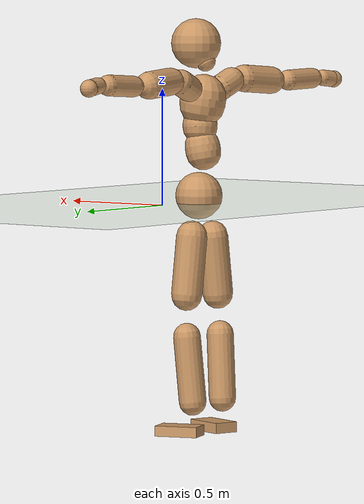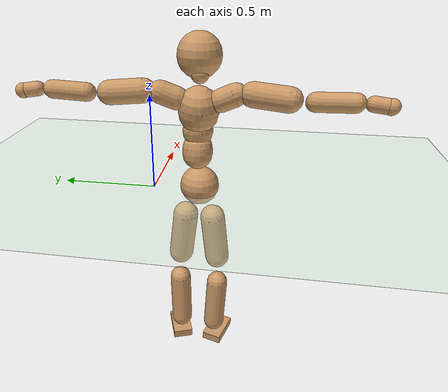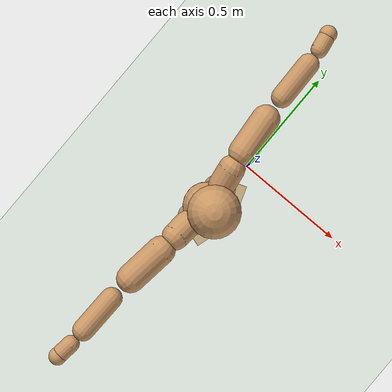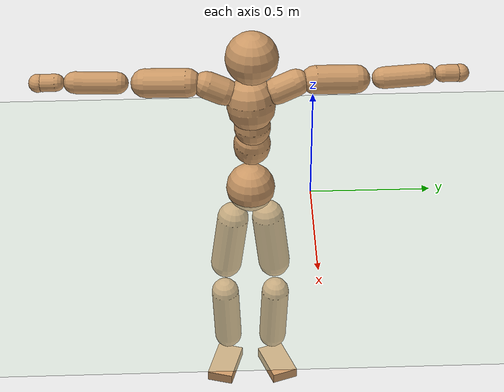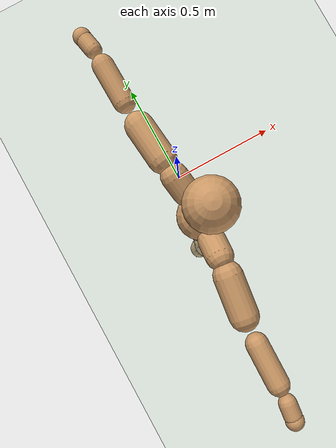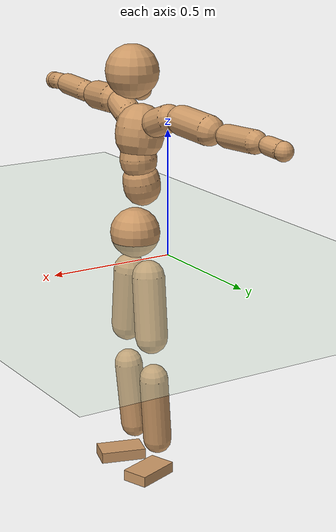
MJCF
<mujoco model="humanoid">
  <compiler coordinate="local"/>
  <default>
    <joint damping="0.0" armature="0.01" stiffness="0.0" limited="true"/>
    <geom conaffinity="1" condim="3" contype="7" margin="0.001" rgba="0.8 0.6 .4 1"/>
  </default>
  <asset>
    <texture type="skybox" builtin="gradient" rgb1=".4 .5 .6" rgb2="0 0 0" width="100" height="100"/>
    <texture builtin="flat" height="1278" mark="cross" markrgb="1 1 1" name="texgeom" random="0.01" rgb1="0.8 0.6 0.4" rgb2="0.8 0.6 0.4" type="cube" width="127"/>
    <texture builtin="checker" height="100" name="texplane" rgb1="0 0 0" rgb2="0.8 0.8 0.8" type="2d" width="100"/>
    <material name="MatPlane" reflectance="0.5" shininess="1" specular="1" texrepeat="60 60" texture="texplane"/>
    <material name="geom" texture="texgeom" texuniform="true"/>
  </asset>
  <worldbody>
    <light cutoff="100" diffuse="1 1 1" dir="-0 0 -1.3" directional="true" exponent="1" pos="0 0 1.3" specular=".1 .1 .1"/>
    <geom conaffinity="1" condim="3" name="floor" pos="0 0 0" rgba="0.8 0.9 0.8 1" size="100 100 .2" type="plane" material="MatPlane"/>
    <body name="Pelvis" pos="-0.0016 -0.2505 0.0307">
      <freejoint name="Pelvis"/>
      <geom type="sphere" contype="1" conaffinity="1" density="500" size="0.1022" pos="0.0000 0.0000 0.0000" name="Pelvis"/>
      <body name="L_Hip" pos="-0.0197 0.0631 -0.0869">
        <joint name="L_Hip_x" type="hinge" pos="0 0 0" axis="1 0 0" stiffness="800" damping="80" armature="0.02" range="-180.0000 180.0000"/>
        <joint name="L_Hip_y" type="hinge" pos="0 0 0" axis="0 1 0" stiffness="800" damping="80" armature="0.02" range="-180.0000 180.0000"/>
        <joint name="L_Hip_z" type="hinge" pos="0 0 0" axis="0 0 1" stiffness="800" damping="80" armature="0.02" range="-180.0000 180.0000"/>
        <geom type="capsule" contype="1" conaffinity="1" density="500" fromto="0.0014 0.0100 -0.0849 0.0056 0.0399 -0.3395" size="0.067" name="L_Hip"/>
        <body name="L_Knee" pos="0.007 0.0498 -0.4243">
          <joint name="L_Knee_x" type="hinge" pos="0 0 0" axis="1 0 0" stiffness="800" damping="80" armature="0.02" range="-180.0000 180.0000"/>
          <joint name="L_Knee_y" type="hinge" pos="0 0 0" axis="0 1 0" stiffness="800" damping="80" armature="0.02" range="-180.0000 180.0000"/>
          <joint name="L_Knee_z" type="hinge" pos="0 0 0" axis="0 0 1" stiffness="800" damping="80" armature="0.02" range="-180.0000 180.0000"/>
          <geom type="capsule" contype="1" conaffinity="1" density="500" fromto="-0.0080 -0.0031 -0.0944 -0.0321 -0.0125 -0.3776" size="0.0591" name="L_Knee"/>
          <body name="L_Ankle" pos="-0.0401 -0.0156 -0.472">
            <joint name="L_Ankle_x" type="hinge" pos="0 0 0" axis="1 0 0" stiffness="800" damping="80" armature="0.02" range="-180.0000 180.0000"/>
            <joint name="L_Ankle_y" type="hinge" pos="0 0 0" axis="0 1 0" stiffness="800" damping="80" armature="0.02" range="-180.0000 180.0000"/>
            <joint name="L_Ankle_z" type="hinge" pos="0 0 0" axis="0 0 1" stiffness="800" damping="80" armature="0.02" range="-180.0000 180.0000"/>
            <geom type="box" contype="1" conaffinity="1" density="500" pos="0.0646 0.0230 -0.0329" size="0.0941 0.0561 0.0226" quat="0.9855 0.0000 0.0000 0.1699" name="L_Ankle"/>
            <body name="L_Toe" pos="0.1292 0.0459 -0.0659">
              <joint name="L_Toe_x" type="hinge" pos="0 0 0" axis="1 0 0" stiffness="500" damping="50" armature="0.02" range="-180.0000 180.0000"/>
              <joint name="L_Toe_y" type="hinge" pos="0 0 0" axis="0 1 0" stiffness="500" damping="50" armature="0.02" range="-180.0000 180.0000"/>
              <joint name="L_Toe_z" type="hinge" pos="0 0 0" axis="0 0 1" stiffness="500" damping="50" armature="0.02" range="-180.0000 180.0000"/>
              <geom type="box" contype="1" conaffinity="1" density="500" pos="0.0000 0.0000 0.0331" size="0.0011 0.0026 0.0011" quat="0.9847 0.0000 0.0000 0.1742" name="L_Toe"/>
            </body>
          </body>
        </body>
      </body>
      <body name="R_Hip" pos="-0.0164 -0.0646 -0.0947">
        <joint name="R_Hip_x" type="hinge" pos="0 0 0" axis="1 0 0" stiffness="800" damping="80" armature="0.02" range="-180.0000 180.0000"/>
        <joint name="R_Hip_y" type="hinge" pos="0 0 0" axis="0 1 0" stiffness="800" damping="80" armature="0.02" range="-180.0000 180.0000"/>
        <joint name="R_Hip_z" type="hinge" pos="0 0 0" axis="0 0 1" stiffness="800" damping="80" armature="0.02" range="-180.0000 180.0000"/>
        <geom type="capsule" contype="1" conaffinity="1" density="500" fromto="-0.0014 -0.0100 -0.0845 -0.0056 -0.0400 -0.3381" size="0.0662" name="R_Hip"/>
        <body name="R_Knee" pos="-0.007 -0.05 -0.4227">
          <joint name="R_Knee_x" type="hinge" pos="0 0 0" axis="1 0 0" stiffness="800" damping="80" armature="0.02" range="-180.0000 180.0000"/>
          <joint name="R_Knee_y" type="hinge" pos="0 0 0" axis="0 1 0" stiffness="800" damping="80" armature="0.02" range="-180.0000 180.0000"/>
          <joint name="R_Knee_z" type="hinge" pos="0 0 0" axis="0 0 1" stiffness="800" damping="80" armature="0.02" range="-180.0000 180.0000"/>
          <geom type="capsule" contype="1" conaffinity="1" density="500" fromto="-0.0074 0.0041 -0.0932 -0.0296 0.0165 -0.3728" size="0.0589" name="R_Knee"/>
          <body name="R_Ankle" pos="-0.037 0.0206 -0.466">
            <joint name="R_Ankle_x" type="hinge" pos="0 0 0" axis="1 0 0" stiffness="800" damping="80" armature="0.02" range="-180.0000 180.0000"/>
            <joint name="R_Ankle_y" type="hinge" pos="0 0 0" axis="0 1 0" stiffness="800" damping="80" armature="0.02" range="-180.0000 180.0000"/>
            <joint name="R_Ankle_z" type="hinge" pos="0 0 0" axis="0 0 1" stiffness="800" damping="80" armature="0.02" range="-180.0000 180.0000"/>
            <geom type="box" contype="1" conaffinity="1" density="500" pos="0.0688 -0.0204 -0.0341" size="0.0957 0.0551 0.0228" quat="0.9896 0.0000 0.0000 -0.1436" name="R_Ankle"/>
            <body name="R_Toe" pos="0.1377 -0.0408 -0.0683">
              <joint name="R_Toe_x" type="hinge" pos="0 0 0" axis="1 0 0" stiffness="500" damping="50" armature="0.02" range="-180.0000 180.0000"/>
              <joint name="R_Toe_y" type="hinge" pos="0 0 0" axis="0 1 0" stiffness="500" damping="50" armature="0.02" range="-180.0000 180.0000"/>
              <joint name="R_Toe_z" type="hinge" pos="0 0 0" axis="0 0 1" stiffness="500" damping="50" armature="0.02" range="-180.0000 180.0000"/>
              <geom type="box" contype="1" conaffinity="1" density="500" pos="0.0000 0.0000 0.0347" size="0.0011 0.0026 0.0012" quat="0.9908 0.0000 0.0000 -0.1351" name="R_Toe"/>
            </body>
          </body>
        </body>
      </body>
      <body name="Torso" pos="-0.0417 0.0048 0.1305">
        <joint name="Torso_x" type="hinge" pos="0 0 0" axis="1 0 0" stiffness="1000" damping="100" armature="0.02" range="-180.0000 180.0000"/>
        <joint name="Torso_y" type="hinge" pos="0 0 0" axis="0 1 0" stiffness="1000" damping="100" armature="0.02" range="-180.0000 180.0000"/>
        <joint name="Torso_z" type="hinge" pos="0 0 0" axis="0 0 1" stiffness="1000" damping="100" armature="0.02" range="-180.0000 180.0000"/>
        <geom type="capsule" contype="1" conaffinity="1" density="500" fromto="0.0170 0.0025 0.0872 0.0113 0.0016 0.0582" size="0.076167" name="Torso"/>
        <body name="Spine" pos="0.0283 0.0041 0.1454">
          <joint name="Spine_x" type="hinge" pos="0 0 0" axis="1 0 0" stiffness="1000" damping="100" armature="0.02" range="-180.0000 180.0000"/>
          <joint name="Spine_y" type="hinge" pos="0 0 0" axis="0 1 0" stiffness="1000" damping="100" armature="0.02" range="-180.0000 180.0000"/>
          <joint name="Spine_z" type="hinge" pos="0 0 0" axis="0 0 1" stiffness="1000" damping="100" armature="0.02" range="-180.0000 180.0000"/>
          <geom type="capsule" contype="1" conaffinity="1" density="500" fromto="0.0014 -0.0017 0.0356 0.0009 -0.0011 0.0238" size="0.075516" name="Spine"/>
          <body name="Chest" pos="0.0023 -0.0028 0.0594">
            <joint name="Chest_x" type="hinge" pos="0 0 0" axis="1 0 0" stiffness="1000" damping="100" armature="0.02" range="-180.0000 180.0000"/>
            <joint name="Chest_y" type="hinge" pos="0 0 0" axis="0 1 0" stiffness="1000" damping="100" armature="0.02" range="-180.0000 180.0000"/>
            <joint name="Chest_z" type="hinge" pos="0 0 0" axis="0 0 1" stiffness="1000" damping="100" armature="0.02" range="-180.0000 180.0000"/>
            <geom type="capsule" contype="1" conaffinity="1" density="500" fromto="-0.0146 -0.0049 0.0941 -0.0097 -0.0033 0.0627" size="0.099138" name="Chest"/>
            <body name="Neck" pos="-0.0321 -0.0135 0.2286">
              <joint name="Neck_x" type="hinge" pos="0 0 0" axis="1 0 0" stiffness="500" damping="50" armature="0.02" range="-180.0000 180.0000"/>
              <joint name="Neck_y" type="hinge" pos="0 0 0" axis="0 1 0" stiffness="500" damping="50" armature="0.02" range="-180.0000 180.0000"/>
              <joint name="Neck_z" type="hinge" pos="0 0 0" axis="0 0 1" stiffness="500" damping="50" armature="0.02" range="-180.0000 180.0000"/>
              <geom type="capsule" contype="1" conaffinity="1" density="500" fromto="0.0112 0.0022 0.0194 0.0446 0.0088 0.0776" size="0.04371" name="Neck"/>
              <body name="Head" pos="0.0558 0.011 0.097">
                <joint name="Head_x" type="hinge" pos="0 0 0" axis="1 0 0" stiffness="500" damping="50" armature="0.02" range="-180.0000 180.0000"/>
                <joint name="Head_y" type="hinge" pos="0 0 0" axis="0 1 0" stiffness="500" damping="50" armature="0.02" range="-180.0000 180.0000"/>
                <joint name="Head_z" type="hinge" pos="0 0 0" axis="0 0 1" stiffness="500" damping="50" armature="0.02" range="-180.0000 180.0000"/>
                <geom type="sphere" contype="1" conaffinity="1" density="500" size="0.1078" pos="0.0000 0.0000 0.0000" name="Head"/>
              </body>
            </body>
            <body name="L_Thorax" pos="-0.0175 0.076 0.1219">
              <joint name="L_Thorax_x" type="hinge" pos="0 0 0" axis="1 0 0" stiffness="500" damping="50" armature="0.02" range="-180.0000 180.0000"/>
              <joint name="L_Thorax_y" type="hinge" pos="0 0 0" axis="0 1 0" stiffness="500" damping="50" armature="0.02" range="-180.0000 180.0000"/>
              <joint name="L_Thorax_z" type="hinge" pos="0 0 0" axis="0 0 1" stiffness="500" damping="50" armature="0.02" range="-180.0000 180.0000"/>
              <geom type="capsule" contype="1" conaffinity="1" density="500" fromto="-0.0039 0.0253 0.0100 -0.0156 0.1014 0.0400" size="0.0564" name="L_Thorax"/>
              <body name="L_Shoulder" pos="-0.0195 0.1267 0.05">
                <joint name="L_Shoulder_x" type="hinge" pos="0 0 0" axis="1 0 0" stiffness="500" damping="50" armature="0.02" range="-720.0000 720.0000"/>
                <joint name="L_Shoulder_y" type="hinge" pos="0 0 0" axis="0 1 0" stiffness="500" damping="50" armature="0.02" range="-720.0000 720.0000"/>
                <joint name="L_Shoulder_z" type="hinge" pos="0 0 0" axis="0 0 1" stiffness="500" damping="50" armature="0.02" range="-720.0000 720.0000"/>
                <geom type="capsule" contype="1" conaffinity="1" density="500" fromto="-0.0051 0.0546 -0.0040 -0.0206 0.2186 -0.0160" size="0.0591" name="L_Shoulder"/>
                <body name="L_Elbow" pos="-0.0257 0.2732 -0.02">
                  <joint name="L_Elbow_x" type="hinge" pos="0 0 0" axis="1 0 0" stiffness="500" damping="50" armature="0.02" range="-720.0000 720.0000"/>
                  <joint name="L_Elbow_y" type="hinge" pos="0 0 0" axis="0 1 0" stiffness="500" damping="50" armature="0.02" range="-720.0000 720.0000"/>
                  <joint name="L_Elbow_z" type="hinge" pos="0 0 0" axis="0 0 1" stiffness="500" damping="50" armature="0.02" range="-720.0000 720.0000"/>
                  <geom type="capsule" contype="1" conaffinity="1" density="500" fromto="-0.0012 0.0565 0.0030 -0.0049 0.2261 0.0122" size="0.0448" name="L_Elbow"/>
                  <body name="L_Wrist" pos="-0.0061 0.2826 0.0152">
                    <joint name="L_Wrist_x" type="hinge" pos="0 0 0" axis="1 0 0" stiffness="300" damping="30" armature="0.02" range="-180.0000 180.0000"/>
                    <joint name="L_Wrist_y" type="hinge" pos="0 0 0" axis="0 1 0" stiffness="300" damping="30" armature="0.02" range="-180.0000 180.0000"/>
                    <joint name="L_Wrist_z" type="hinge" pos="0 0 0" axis="0 0 1" stiffness="300" damping="30" armature="0.02" range="-180.0000 180.0000"/>
                    <geom type="capsule" contype="1" conaffinity="1" density="500" fromto="-0.0033 0.0180 -0.0023 -0.0130 0.0721 -0.0090" size="0.0355" name="L_Wrist"/>
                    <body name="L_Hand" pos="-0.0163 0.0901 -0.0113">
                      <joint name="L_Hand_x" type="hinge" pos="0 0 0" axis="1 0 0" stiffness="300" damping="30" armature="0.02" range="-180.0000 180.0000"/>
                      <joint name="L_Hand_y" type="hinge" pos="0 0 0" axis="0 1 0" stiffness="300" damping="30" armature="0.02" range="-180.0000 180.0000"/>
                      <joint name="L_Hand_z" type="hinge" pos="0 0 0" axis="0 0 1" stiffness="300" damping="30" armature="0.02" range="-180.0000 180.0000"/>
                      <geom type="sphere" contype="1" conaffinity="1" density="500" size="0.0370" pos="0.0000 0.0000 0.0000" name="L_Hand"/>
                    </body>
                  </body>
                </body>
              </body>
            </body>
            <body name="R_Thorax" pos="-0.0235 -0.0872 0.1198">
              <joint name="R_Thorax_x" type="hinge" pos="0 0 0" axis="1 0 0" stiffness="500" damping="50" armature="0.02" range="-180.0000 180.0000"/>
              <joint name="R_Thorax_y" type="hinge" pos="0 0 0" axis="0 1 0" stiffness="500" damping="50" armature="0.02" range="-180.0000 180.0000"/>
              <joint name="R_Thorax_z" type="hinge" pos="0 0 0" axis="0 0 1" stiffness="500" damping="50" armature="0.02" range="-180.0000 180.0000"/>
              <geom type="capsule" contype="1" conaffinity="1" density="500" fromto="-0.0017 -0.0236 0.0105 -0.0069 -0.0944 0.0421" size="0.0565" name="R_Thorax"/>
              <body name="R_Shoulder" pos="-0.0086 -0.118 0.0526">
                <joint name="R_Shoulder_x" type="hinge" pos="0 0 0" axis="1 0 0" stiffness="500" damping="50" armature="0.02" range="-720.0000 720.0000"/>
                <joint name="R_Shoulder_y" type="hinge" pos="0 0 0" axis="0 1 0" stiffness="500" damping="50" armature="0.02" range="-720.0000 720.0000"/>
                <joint name="R_Shoulder_z" type="hinge" pos="0 0 0" axis="0 0 1" stiffness="500" damping="50" armature="0.02" range="-720.0000 720.0000"/>
                <geom type="capsule" contype="1" conaffinity="1" density="500" fromto="-0.0070 -0.0558 -0.0040 -0.0278 -0.2232 -0.0162" size="0.0599" name="R_Shoulder"/>
                <body name="R_Elbow" pos="-0.0348 -0.2791 -0.0202">
                  <joint name="R_Elbow_x" type="hinge" pos="0 0 0" axis="1 0 0" stiffness="500" damping="50" armature="0.02" range="-720.0000 720.0000"/>
                  <joint name="R_Elbow_y" type="hinge" pos="0 0 0" axis="0 1 0" stiffness="500" damping="50" armature="0.02" range="-720.0000 720.0000"/>
                  <joint name="R_Elbow_z" type="hinge" pos="0 0 0" axis="0 0 1" stiffness="500" damping="50" armature="0.02" range="-720.0000 720.0000"/>
                  <geom type="capsule" contype="1" conaffinity="1" density="500" fromto="-0.0012 -0.0573 0.0015 -0.0048 -0.2294 0.0060" size="0.0453" name="R_Elbow"/>
                  <body name="R_Wrist" pos="-0.0061 -0.2867 0.0075">
                    <joint name="R_Wrist_x" type="hinge" pos="0 0 0" axis="1 0 0" stiffness="300" damping="30" armature="0.02" range="-180.0000 180.0000"/>
                    <joint name="R_Wrist_y" type="hinge" pos="0 0 0" axis="0 1 0" stiffness="300" damping="30" armature="0.02" range="-180.0000 180.0000"/>
                    <joint name="R_Wrist_z" type="hinge" pos="0 0 0" axis="0 0 1" stiffness="300" damping="30" armature="0.02" range="-180.0000 180.0000"/>
                    <geom type="capsule" contype="1" conaffinity="1" density="500" fromto="-0.0021 -0.0185 -0.0018 -0.0085 -0.0738 -0.0072" size="0.036" name="R_Wrist"/>
                    <body name="R_Hand" pos="-0.0106 -0.0923 -0.009">
                      <joint name="R_Hand_x" type="hinge" pos="0 0 0" axis="1 0 0" stiffness="300" damping="30" armature="0.02" range="-180.0000 180.0000"/>
                      <joint name="R_Hand_y" type="hinge" pos="0 0 0" axis="0 1 0" stiffness="300" damping="30" armature="0.02" range="-180.0000 180.0000"/>
                      <joint name="R_Hand_z" type="hinge" pos="0 0 0" axis="0 0 1" stiffness="300" damping="30" armature="0.02" range="-180.0000 180.0000"/>
                      <geom type="sphere" contype="1" conaffinity="1" density="500" size="0.0375" pos="0.0000 0.0000 0.0000" name="R_Hand"/>
                    </body>
                  </body>
                </body>
              </body>
            </body>
          </body>
        </body>
      </body>
    </body>
  </worldbody>
  <actuator>
    <motor name="L_Hip_x" joint="L_Hip_x" gear="500"/>
    <motor name="L_Hip_y" joint="L_Hip_y" gear="500"/>
    <motor name="L_Hip_z" joint="L_Hip_z" gear="500"/>
    <motor name="L_Knee_x" joint="L_Knee_x" gear="500"/>
    <motor name="L_Knee_y" joint="L_Knee_y" gear="500"/>
    <motor name="L_Knee_z" joint="L_Knee_z" gear="500"/>
    <motor name="L_Ankle_x" joint="L_Ankle_x" gear="500"/>
    <motor name="L_Ankle_y" joint="L_Ankle_y" gear="500"/>
    <motor name="L_Ankle_z" joint="L_Ankle_z" gear="500"/>
    <motor name="L_Toe_x" joint="L_Toe_x" gear="500"/>
    <motor name="L_Toe_y" joint="L_Toe_y" gear="500"/>
    <motor name="L_Toe_z" joint="L_Toe_z" gear="500"/>
    <motor name="R_Hip_x" joint="R_Hip_x" gear="500"/>
    <motor name="R_Hip_y" joint="R_Hip_y" gear="500"/>
    <motor name="R_Hip_z" joint="R_Hip_z" gear="500"/>
    <motor name="R_Knee_x" joint="R_Knee_x" gear="500"/>
    <motor name="R_Knee_y" joint="R_Knee_y" gear="500"/>
    <motor name="R_Knee_z" joint="R_Knee_z" gear="500"/>
    <motor name="R_Ankle_x" joint="R_Ankle_x" gear="500"/>
    <motor name="R_Ankle_y" joint="R_Ankle_y" gear="500"/>
    <motor name="R_Ankle_z" joint="R_Ankle_z" gear="500"/>
    <motor name="R_Toe_x" joint="R_Toe_x" gear="500"/>
    <motor name="R_Toe_y" joint="R_Toe_y" gear="500"/>
    <motor name="R_Toe_z" joint="R_Toe_z" gear="500"/>
    <motor name="Torso_x" joint="Torso_x" gear="500"/>
    <motor name="Torso_y" joint="Torso_y" gear="500"/>
    <motor name="Torso_z" joint="Torso_z" gear="500"/>
    <motor name="Spine_x" joint="Spine_x" gear="500"/>
    <motor name="Spine_y" joint="Spine_y" gear="500"/>
    <motor name="Spine_z" joint="Spine_z" gear="500"/>
    <motor name="Chest_x" joint="Chest_x" gear="500"/>
    <motor name="Chest_y" joint="Chest_y" gear="500"/>
    <motor name="Chest_z" joint="Chest_z" gear="500"/>
    <motor name="Neck_x" joint="Neck_x" gear="500"/>
    <motor name="Neck_y" joint="Neck_y" gear="500"/>
    <motor name="Neck_z" joint="Neck_z" gear="500"/>
    <motor name="Head_x" joint="Head_x" gear="500"/>
    <motor name="Head_y" joint="Head_y" gear="500"/>
    <motor name="Head_z" joint="Head_z" gear="500"/>
    <motor name="L_Thorax_x" joint="L_Thorax_x" gear="500"/>
    <motor name="L_Thorax_y" joint="L_Thorax_y" gear="500"/>
    <motor name="L_Thorax_z" joint="L_Thorax_z" gear="500"/>
    <motor name="L_Shoulder_x" joint="L_Shoulder_x" gear="500"/>
    <motor name="L_Shoulder_y" joint="L_Shoulder_y" gear="500"/>
    <motor name="L_Shoulder_z" joint="L_Shoulder_z" gear="500"/>
    <motor name="L_Elbow_x" joint="L_Elbow_x" gear="500"/>
    <motor name="L_Elbow_y" joint="L_Elbow_y" gear="500"/>
    <motor name="L_Elbow_z" joint="L_Elbow_z" gear="500"/>
    <motor name="L_Wrist_x" joint="L_Wrist_x" gear="500"/>
    <motor name="L_Wrist_y" joint="L_Wrist_y" gear="500"/>
    <motor name="L_Wrist_z" joint="L_Wrist_z" gear="500"/>
    <motor name="L_Hand_x" joint="L_Hand_x" gear="500"/>
    <motor name="L_Hand_y" joint="L_Hand_y" gear="500"/>
    <motor name="L_Hand_z" joint="L_Hand_z" gear="500"/>
    <motor name="R_Thorax_x" joint="R_Thorax_x" gear="500"/>
    <motor name="R_Thorax_y" joint="R_Thorax_y" gear="500"/>
    <motor name="R_Thorax_z" joint="R_Thorax_z" gear="500"/>
    <motor name="R_Shoulder_x" joint="R_Shoulder_x" gear="500"/>
    <motor name="R_Shoulder_y" joint="R_Shoulder_y" gear="500"/>
    <motor name="R_Shoulder_z" joint="R_Shoulder_z" gear="500"/>
    <motor name="R_Elbow_x" joint="R_Elbow_x" gear="500"/>
    <motor name="R_Elbow_y" joint="R_Elbow_y" gear="500"/>
    <motor name="R_Elbow_z" joint="R_Elbow_z" gear="500"/>
    <motor name="R_Wrist_x" joint="R_Wrist_x" gear="500"/>
    <motor name="R_Wrist_y" joint="R_Wrist_y" gear="500"/>
    <motor name="R_Wrist_z" joint="R_Wrist_z" gear="500"/>
    <motor name="R_Hand_x" joint="R_Hand_x" gear="500"/>
    <motor name="R_Hand_y" joint="R_Hand_y" gear="500"/>
    <motor name="R_Hand_z" joint="R_Hand_z" gear="500"/>
  </actuator>
  <contact>
    <exclude body1="Torso" body2="Chest"/>
    <exclude body1="Head" body2="Chest"/>
    <exclude body1="R_Knee" body2="R_Toe"/>
    <exclude body1="R_Knee" body2="L_Ankle"/>
    <exclude body1="R_Knee" body2="L_Toe"/>
    <exclude body1="L_Knee" body2="L_Toe"/>
    <exclude body1="L_Knee" body2="R_Ankle"/>
    <exclude body1="L_Knee" body2="R_Toe"/>
    <exclude body1="L_Shoulder" body2="Chest"/>
    <exclude body1="R_Shoulder" body2="Chest"/>
  </contact>
  <sensor/>
  <size njmax="700" nconmax="700"/>
</mujoco>
